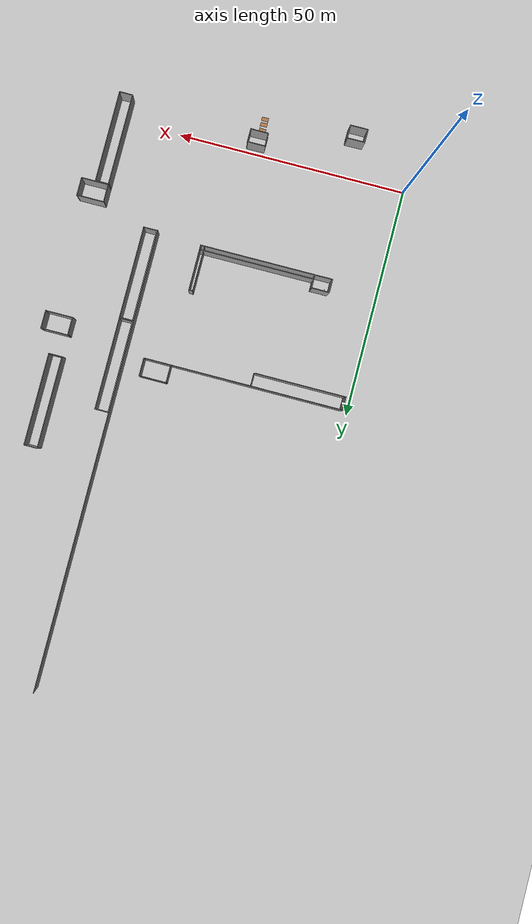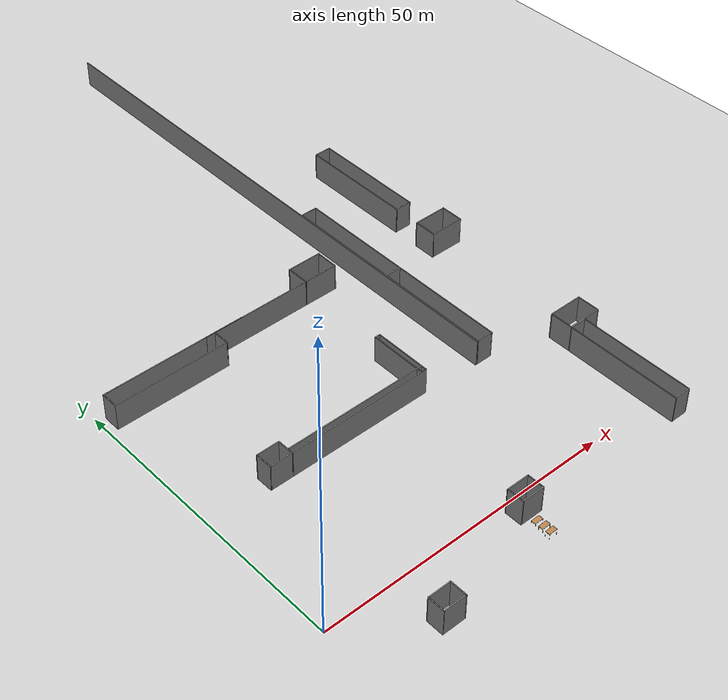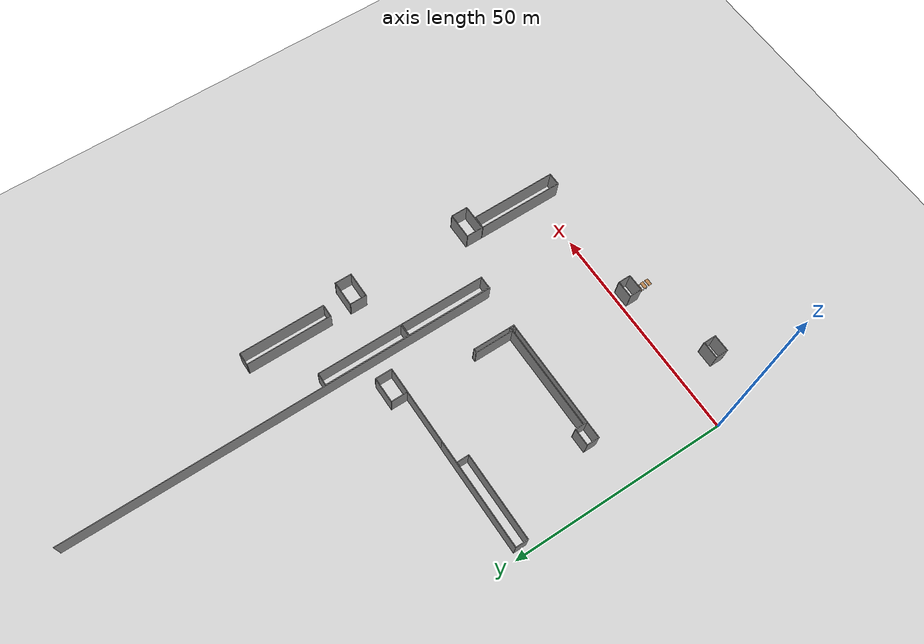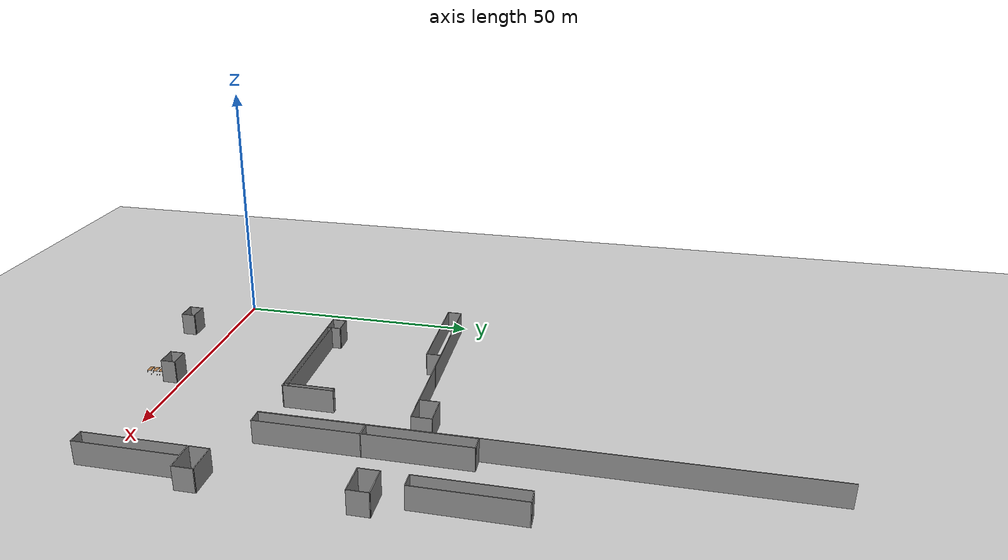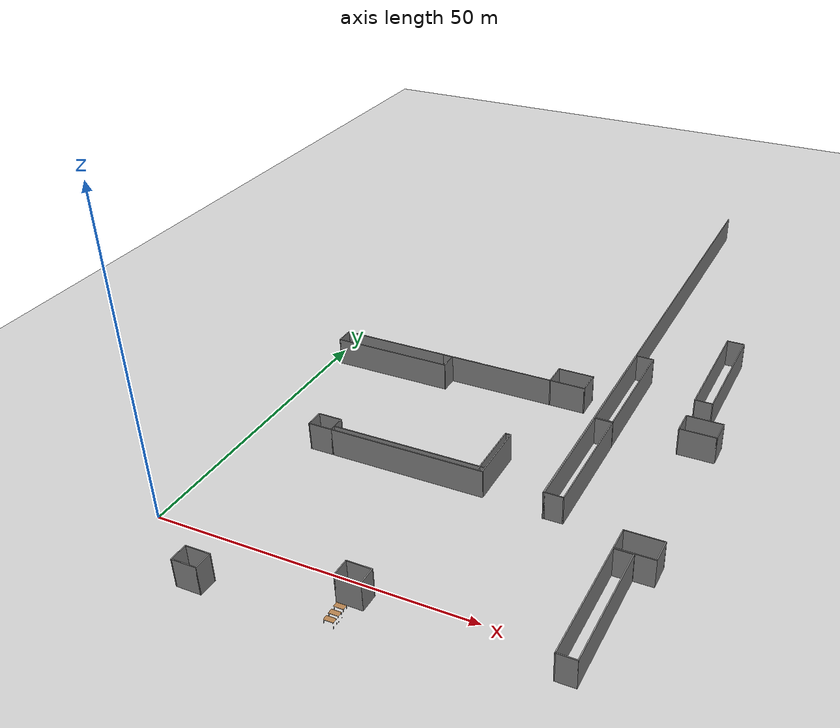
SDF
<sdf version="1.6">
 <world name="default">
  <model name="ground_plane">
   <static>1</static>
   <link name="link">
    <collision name="collision">
     <geometry><plane><normal>0 0 1</normal><size>320 320</size></plane></geometry>
     <surface>
      <contact><collide_bitmask>65535</collide_bitmask></contact>
      <friction><ode><mu>100</mu><mu2>50</mu2></ode></friction>
     </surface>
    </collision>
    <visual name="visual">
     <cast_shadows>0</cast_shadows>
     <geometry><plane><normal>0 0 1</normal><size>320 320</size></plane></geometry>
     <material>
      <script><uri>file://media/materials/scripts/gazebo.material</uri><name>Gazebo/Grey</name></script>
     </material>
    </visual>
   </link>
  </model>
  <model name="wall_25m_5">
   <pose>14.0033 49.3464 0 0 -0 0</pose>
   <link name="Wall_28">
    <collision name="Wall_28_Collision">
     <geometry><box><size>25 0.15 6.555</size></box></geometry>
     <pose>0 0 1.25 0 -0 0</pose>
    </collision>
    <visual name="Wall_28_Visual">
     <pose>0 0 1.25 0 -0 0</pose>
     <geometry><box><size>25 0.15 6.555</size></box></geometry>
     <material>
      <script><uri>file://media/materials/scripts/gazebo.material</uri><name>Gazebo/Grey</name></script>
      <ambient>1 1 1 1</ambient>
     </material>
     <meta><layer>0</layer></meta>
    </visual>
   </link>
   <static>1</static>
  </model>
  <model name="base10x1">
   <pose>38.8343 28.0126 0 0 -0 0</pose>
   <link name="Wall_15">
    <collision name="Wall_15_Collision">
     <geometry><box><size>10 0.15 6.555</size></box></geometry>
     <pose>0 0 1.25 0 -0 0</pose>
    </collision>
    <visual name="Wall_15_Visual">
     <pose>0 0 1.25 0 -0 0</pose>
     <geometry><box><size>10 0.15 6.555</size></box></geometry>
     <material>
      <script><uri>file://media/materials/scripts/gazebo.material</uri><name>Gazebo/Grey</name></script>
      <ambient>1 1 1 1</ambient>
     </material>
     <meta><layer>0</layer></meta>
    </visual>
    <pose>-0.425 0 0 0 -0 1.5708</pose>
   </link>
   <link name="Wall_16">
    <collision name="Wall_16_Collision">
     <geometry><box><size>1 0.15 6.555</size></box></geometry>
     <pose>0 0 1.25 0 -0 0</pose>
    </collision>
    <visual name="Wall_16_Visual">
     <pose>0 0 1.25 0 -0 0</pose>
     <geometry><box><size>1 0.15 6.555</size></box></geometry>
     <material>
      <script><uri>file://media/materials/scripts/gazebo.material</uri><name>Gazebo/Grey</name></script>
      <ambient>1 1 1 1</ambient>
     </material>
     <meta><layer>0</layer></meta>
    </visual>
    <pose>0 4.925 0 0 -0 0</pose>
   </link>
   <link name="Wall_17">
    <collision name="Wall_17_Collision">
     <geometry><box><size>10 0.15 6.555</size></box></geometry>
     <pose>0 0 1.25 0 -0 0</pose>
    </collision>
    <visual name="Wall_17_Visual">
     <pose>0 0 1.25 0 -0 0</pose>
     <geometry><box><size>10 0.15 6.555</size></box></geometry>
     <material>
      <script><uri>file://media/materials/scripts/gazebo.material</uri><name>Gazebo/Grey</name></script>
      <ambient>1 1 1 1</ambient>
     </material>
     <meta><layer>0</layer></meta>
    </visual>
    <pose>0.425 0 0 0 -0 -1.5708</pose>
   </link>
   <link name="Wall_18">
    <collision name="Wall_18_Collision">
     <geometry><box><size>1 0.15 6.555</size></box></geometry>
     <pose>0 0 1.25 0 -0 0</pose>
    </collision>
    <visual name="Wall_18_Visual">
     <pose>0 0 1.25 0 -0 0</pose>
     <geometry><box><size>1 0.15 6.555</size></box></geometry>
     <material>
      <script><uri>file://media/materials/scripts/gazebo.material</uri><name>Gazebo/Grey</name></script>
      <ambient>1 1 1 1</ambient>
     </material>
     <meta><layer>0</layer></meta>
    </visual>
    <pose>0 -4.925 0 0 -0 3.14159</pose>
   </link>
   <static>1</static>
  </model>
  <model name="base3x4_30">
   <pose>12.3458 24.5057 0 0 -0 0</pose>
   <link name="Wall_18">
    <collision name="Wall_18_Collision">
     <geometry><box><size>3 0.15 6.555</size></box></geometry>
     <pose>0 0 1.25 0 -0 0</pose>
    </collision>
    <visual name="Wall_18_Visual">
     <pose>0 0 1.25 0 -0 0</pose>
     <geometry><box><size>3 0.15 6.555</size></box></geometry>
     <material>
      <script><uri>file://media/materials/scripts/gazebo.material</uri><name>Gazebo/Grey</name></script>
      <ambient>1 1 1 1</ambient>
     </material>
     <meta><layer>0</layer></meta>
    </visual>
    <pose>-1.925 -0 0 0 -0 -1.5708</pose>
   </link>
   <link name="Wall_19">
    <collision name="Wall_19_Collision">
     <geometry><box><size>4 0.15 6.555</size></box></geometry>
     <pose>0 0 1.25 0 -0 0</pose>
    </collision>
    <visual name="Wall_19_Visual">
     <pose>0 0 1.25 0 -0 0</pose>
     <geometry><box><size>4 0.15 6.555</size></box></geometry>
     <material>
      <script><uri>file://media/materials/scripts/gazebo.material</uri><name>Gazebo/Grey</name></script>
      <ambient>1 1 1 1</ambient>
     </material>
     <meta><layer>0</layer></meta>
    </visual>
    <pose>-0 -1.425 0 0 -0 0</pose>
   </link>
   <link name="Wall_20">
    <collision name="Wall_20_Collision">
     <geometry><box><size>3 0.15 6.555</size></box></geometry>
     <pose>0 0 1.25 0 -0 0</pose>
    </collision>
    <visual name="Wall_20_Visual">
     <pose>0 0 1.25 0 -0 0</pose>
     <geometry><box><size>3 0.15 6.555</size></box></geometry>
     <material>
      <script><uri>file://media/materials/scripts/gazebo.material</uri><name>Gazebo/Grey</name></script>
      <ambient>1 1 1 1</ambient>
     </material>
     <meta><layer>0</layer></meta>
    </visual>
    <pose>1.925 -0 0 0 -0 1.5708</pose>
   </link>
   <link name="Wall_21">
    <collision name="Wall_21_Collision">
     <geometry><box><size>4 0.15 6.555</size></box></geometry>
     <pose>0 0 1.25 0 -0 0</pose>
    </collision>
    <visual name="Wall_21_Visual">
     <pose>0 0 1.25 0 -0 0</pose>
     <geometry><box><size>4 0.15 6.555</size></box></geometry>
     <material>
      <script><uri>file://media/materials/scripts/gazebo.material</uri><name>Gazebo/Grey</name></script>
      <ambient>1 1 1 1</ambient>
     </material>
     <meta><layer>0</layer></meta>
    </visual>
    <pose>-0 1.425 0 0 -0 3.14159</pose>
   </link>
   <static>1</static>
  </model>
  <model name="base3x4_74">
   <pose>33.377 -2.40049 0 0 -0 0</pose>
   <link name="Wall_18">
    <collision name="Wall_18_Collision">
     <geometry><box><size>3 0.15 6.555</size></box></geometry>
     <pose>0 0 1.25 0 -0 0</pose>
    </collision>
    <visual name="Wall_18_Visual">
     <pose>0 0 1.25 0 -0 0</pose>
     <geometry><box><size>3 0.15 6.555</size></box></geometry>
     <material>
      <script><uri>file://media/materials/scripts/gazebo.material</uri><name>Gazebo/Grey</name></script>
      <ambient>1 1 1 1</ambient>
     </material>
     <meta><layer>0</layer></meta>
    </visual>
    <pose>-1.925 -0 0 0 -0 -1.5708</pose>
   </link>
   <link name="Wall_19">
    <collision name="Wall_19_Collision">
     <geometry><box><size>4 0.15 6.555</size></box></geometry>
     <pose>0 0 1.25 0 -0 0</pose>
    </collision>
    <visual name="Wall_19_Visual">
     <pose>0 0 1.25 0 -0 0</pose>
     <geometry><box><size>4 0.15 6.555</size></box></geometry>
     <material>
      <script><uri>file://media/materials/scripts/gazebo.material</uri><name>Gazebo/Grey</name></script>
      <ambient>1 1 1 1</ambient>
     </material>
     <meta><layer>0</layer></meta>
    </visual>
    <pose>-0 -1.425 0 0 -0 0</pose>
   </link>
   <link name="Wall_20">
    <collision name="Wall_20_Collision">
     <geometry><box><size>3 0.15 6.555</size></box></geometry>
     <pose>0 0 1.25 0 -0 0</pose>
    </collision>
    <visual name="Wall_20_Visual">
     <pose>0 0 1.25 0 -0 0</pose>
     <geometry><box><size>3 0.15 6.555</size></box></geometry>
     <material>
      <script><uri>file://media/materials/scripts/gazebo.material</uri><name>Gazebo/Grey</name></script>
      <ambient>1 1 1 1</ambient>
     </material>
     <meta><layer>0</layer></meta>
    </visual>
    <pose>1.925 -0 0 0 -0 1.5708</pose>
   </link>
   <link name="Wall_21">
    <collision name="Wall_21_Collision">
     <geometry><box><size>4 0.15 6.555</size></box></geometry>
     <pose>0 0 1.25 0 -0 0</pose>
    </collision>
    <visual name="Wall_21_Visual">
     <pose>0 0 1.25 0 -0 0</pose>
     <geometry><box><size>4 0.15 6.555</size></box></geometry>
     <material>
      <script><uri>file://media/materials/scripts/gazebo.material</uri><name>Gazebo/Grey</name></script>
      <ambient>1 1 1 1</ambient>
     </material>
     <meta><layer>0</layer></meta>
    </visual>
    <pose>-0 1.425 0 0 -0 3.14159</pose>
   </link>
   <static>1</static>
  </model>
  <model name="wall_25m_0">
   <pose>26.8412 23.0792 0 0 -0 0</pose>
   <link name="Wall_28">
    <collision name="Wall_28_Collision">
     <geometry><box><size>25 0.15 6.555</size></box></geometry>
     <pose>0 0 1.25 0 -0 0</pose>
    </collision>
    <visual name="Wall_28_Visual">
     <pose>0 0 1.25 0 -0 0</pose>
     <geometry><box><size>25 0.15 6.555</size></box></geometry>
     <material>
      <script><uri>file://media/materials/scripts/gazebo.material</uri><name>Gazebo/Grey</name></script>
      <ambient>1 1 1 1</ambient>
     </material>
     <meta><layer>0</layer></meta>
    </visual>
   </link>
   <static>1</static>
  </model>
  <model name="wall_25m_2">
   <pose>26.7296 24.0129 0 0 -0 0</pose>
   <link name="Wall_28">
    <collision name="Wall_28_Collision">
     <geometry><box><size>25 0.15 6.555</size></box></geometry>
     <pose>0 0 1.25 0 -0 0</pose>
    </collision>
    <visual name="Wall_28_Visual">
     <pose>0 0 1.25 0 -0 0</pose>
     <geometry><box><size>25 0.15 6.555</size></box></geometry>
     <material>
      <script><uri>file://media/materials/scripts/gazebo.material</uri><name>Gazebo/Grey</name></script>
      <ambient>1 1 1 1</ambient>
     </material>
     <meta><layer>0</layer></meta>
    </visual>
   </link>
   <static>1</static>
  </model>
  <model name="table_9">
   <static>1</static>
   <link name="link">
    <collision name="surface">
     <pose>0 0 1 0 -0 0</pose>
     <geometry><box><size>1.5 0.8 0.03</size></box></geometry>
     <surface><friction><ode><mu>0.6</mu><mu2>0.6</mu2></ode></friction></surface>
    </collision>
    <visual name="visual1">
     <pose>0 0 1 0 -0 0</pose>
     <geometry><box><size>1.5 0.8 0.03</size></box></geometry>
     <material>
      <script><uri>file://media/materials/scripts/gazebo.material</uri><name>Gazebo/Wood</name></script>
     </material>
    </visual>
    <collision name="front_left_leg">
     <pose>0.68 0.38 0.5 0 -0 0</pose>
     <geometry><cylinder><radius>0.02</radius><length>1</length></cylinder></geometry>
    </collision>
    <visual name="front_left_leg">
     <pose>0.68 0.38 0.5 0 -0 0</pose>
     <geometry><cylinder><radius>0.02</radius><length>1</length></cylinder></geometry>
     <material>
      <script><uri>file://media/materials/scripts/gazebo.material</uri><name>Gazebo/Grey</name></script>
     </material>
    </visual>
    <collision name="front_right_leg">
     <pose>0.68 -0.38 0.5 0 -0 0</pose>
     <geometry><cylinder><radius>0.02</radius><length>1</length></cylinder></geometry>
    </collision>
    <visual name="front_right_leg">
     <pose>0.68 -0.38 0.5 0 -0 0</pose>
     <geometry><cylinder><radius>0.02</radius><length>1</length></cylinder></geometry>
     <material>
      <script><uri>file://media/materials/scripts/gazebo.material</uri><name>Gazebo/Grey</name></script>
     </material>
    </visual>
    <collision name="back_right_leg">
     <pose>-0.68 -0.38 0.5 0 -0 0</pose>
     <geometry><cylinder><radius>0.02</radius><length>1</length></cylinder></geometry>
    </collision>
    <visual name="back_right_leg">
     <pose>-0.68 -0.38 0.5 0 -0 0</pose>
     <geometry><cylinder><radius>0.02</radius><length>1</length></cylinder></geometry>
     <material>
      <script><uri>file://media/materials/scripts/gazebo.material</uri><name>Gazebo/Grey</name></script>
     </material>
    </visual>
    <collision name="back_left_leg">
     <pose>-0.68 0.38 0.5 0 -0 0</pose>
     <geometry><cylinder><radius>0.02</radius><length>1</length></cylinder></geometry>
    </collision>
    <visual name="back_left_leg">
     <pose>-0.68 0.38 0.5 0 -0 0</pose>
     <geometry><cylinder><radius>0.02</radius><length>1</length></cylinder></geometry>
     <material>
      <script><uri>file://media/materials/scripts/gazebo.material</uri><name>Gazebo/Grey</name></script>
     </material>
    </visual>
   </link>
   <pose>32.9806 -7.80617 0 0 -0 0</pose>
  </model>
  <model name="table_10">
   <static>1</static>
   <link name="link">
    <collision name="surface">
     <pose>0 0 1 0 -0 0</pose>
     <geometry><box><size>1.5 0.8 0.03</size></box></geometry>
     <surface><friction><ode><mu>0.6</mu><mu2>0.6</mu2></ode></friction></surface>
    </collision>
    <visual name="visual1">
     <pose>0 0 1 0 -0 0</pose>
     <geometry><box><size>1.5 0.8 0.03</size></box></geometry>
     <material>
      <script><uri>file://media/materials/scripts/gazebo.material</uri><name>Gazebo/Wood</name></script>
     </material>
    </visual>
    <collision name="front_left_leg">
     <pose>0.68 0.38 0.5 0 -0 0</pose>
     <geometry><cylinder><radius>0.02</radius><length>1</length></cylinder></geometry>
    </collision>
    <visual name="front_left_leg">
     <pose>0.68 0.38 0.5 0 -0 0</pose>
     <geometry><cylinder><radius>0.02</radius><length>1</length></cylinder></geometry>
     <material>
      <script><uri>file://media/materials/scripts/gazebo.material</uri><name>Gazebo/Grey</name></script>
     </material>
    </visual>
    <collision name="front_right_leg">
     <pose>0.68 -0.38 0.5 0 -0 0</pose>
     <geometry><cylinder><radius>0.02</radius><length>1</length></cylinder></geometry>
    </collision>
    <visual name="front_right_leg">
     <pose>0.68 -0.38 0.5 0 -0 0</pose>
     <geometry><cylinder><radius>0.02</radius><length>1</length></cylinder></geometry>
     <material>
      <script><uri>file://media/materials/scripts/gazebo.material</uri><name>Gazebo/Grey</name></script>
     </material>
    </visual>
    <collision name="back_right_leg">
     <pose>-0.68 -0.38 0.5 0 -0 0</pose>
     <geometry><cylinder><radius>0.02</radius><length>1</length></cylinder></geometry>
    </collision>
    <visual name="back_right_leg">
     <pose>-0.68 -0.38 0.5 0 -0 0</pose>
     <geometry><cylinder><radius>0.02</radius><length>1</length></cylinder></geometry>
     <material>
      <script><uri>file://media/materials/scripts/gazebo.material</uri><name>Gazebo/Grey</name></script>
     </material>
    </visual>
    <collision name="back_left_leg">
     <pose>-0.68 0.38 0.5 0 -0 0</pose>
     <geometry><cylinder><radius>0.02</radius><length>1</length></cylinder></geometry>
    </collision>
    <visual name="back_left_leg">
     <pose>-0.68 0.38 0.5 0 -0 0</pose>
     <geometry><cylinder><radius>0.02</radius><length>1</length></cylinder></geometry>
     <material>
      <script><uri>file://media/materials/scripts/gazebo.material</uri><name>Gazebo/Grey</name></script>
     </material>
    </visual>
   </link>
   <pose>32.9655 -6.58438 0 0 -0 0</pose>
  </model>
  <model name="table_11">
   <static>1</static>
   <link name="link">
    <collision name="surface">
     <pose>0 0 1 0 -0 0</pose>
     <geometry><box><size>1.5 0.8 0.03</size></box></geometry>
     <surface><friction><ode><mu>0.6</mu><mu2>0.6</mu2></ode></friction></surface>
    </collision>
    <visual name="visual1">
     <pose>0 0 1 0 -0 0</pose>
     <geometry><box><size>1.5 0.8 0.03</size></box></geometry>
     <material>
      <script><uri>file://media/materials/scripts/gazebo.material</uri><name>Gazebo/Wood</name></script>
     </material>
    </visual>
    <collision name="front_left_leg">
     <pose>0.68 0.38 0.5 0 -0 0</pose>
     <geometry><cylinder><radius>0.02</radius><length>1</length></cylinder></geometry>
    </collision>
    <visual name="front_left_leg">
     <pose>0.68 0.38 0.5 0 -0 0</pose>
     <geometry><cylinder><radius>0.02</radius><length>1</length></cylinder></geometry>
     <material>
      <script><uri>file://media/materials/scripts/gazebo.material</uri><name>Gazebo/Grey</name></script>
     </material>
    </visual>
    <collision name="front_right_leg">
     <pose>0.68 -0.38 0.5 0 -0 0</pose>
     <geometry><cylinder><radius>0.02</radius><length>1</length></cylinder></geometry>
    </collision>
    <visual name="front_right_leg">
     <pose>0.68 -0.38 0.5 0 -0 0</pose>
     <geometry><cylinder><radius>0.02</radius><length>1</length></cylinder></geometry>
     <material>
      <script><uri>file://media/materials/scripts/gazebo.material</uri><name>Gazebo/Grey</name></script>
     </material>
    </visual>
    <collision name="back_right_leg">
     <pose>-0.68 -0.38 0.5 0 -0 0</pose>
     <geometry><cylinder><radius>0.02</radius><length>1</length></cylinder></geometry>
    </collision>
    <visual name="back_right_leg">
     <pose>-0.68 -0.38 0.5 0 -0 0</pose>
     <geometry><cylinder><radius>0.02</radius><length>1</length></cylinder></geometry>
     <material>
      <script><uri>file://media/materials/scripts/gazebo.material</uri><name>Gazebo/Grey</name></script>
     </material>
    </visual>
    <collision name="back_left_leg">
     <pose>-0.68 0.38 0.5 0 -0 0</pose>
     <geometry><cylinder><radius>0.02</radius><length>1</length></cylinder></geometry>
    </collision>
    <visual name="back_left_leg">
     <pose>-0.68 0.38 0.5 0 -0 0</pose>
     <geometry><cylinder><radius>0.02</radius><length>1</length></cylinder></geometry>
     <material>
      <script><uri>file://media/materials/scripts/gazebo.material</uri><name>Gazebo/Grey</name></script>
     </material>
    </visual>
   </link>
   <pose>32.9166 -5.29279 0 0 -0 0</pose>
  </model>
  <model name="wood_cube_5cm">
   <link name="link">
    <pose>0 0 0.025 0 -0 0</pose>
    <inertial>
     <mass>0.0565</mass>
     <inertia>
      <ixx>2.35417e-05</ixx>
      <ixy>0</ixy>
      <ixz>0</ixz>
      <iyy>2.35417e-05</iyy>
      <iyz>0</iyz>
      <izz>2.35417e-05</izz>
     </inertia>
    </inertial>
    <collision name="collision">
     <geometry><box><size>0.05 0.05 0.05</size></box></geometry>
     <surface>
      <contact>
       <poissons_ratio>0.347</poissons_ratio>
       <elastic_modulus>8.8e+09</elastic_modulus>
       <ode><kp>100000</kp><kd>1</kd><max_vel>1</max_vel><min_depth>0.001</min_depth></ode>
      </contact>
      <friction>
       <torsional>
        <coefficient>1</coefficient>
        <use_patch_radius>0</use_patch_radius>
        <surface_radius>0.05</surface_radius>
       </torsional>
      </friction>
     </surface>
    </collision>
    <visual name="visual">
     <geometry><box><size>0.05 0.05 0.05</size></box></geometry>
     <material>
      <script><uri>file://media/materials/scripts/gazebo.material</uri><name>Gazebo/Wood</name></script>
     </material>
    </visual>
   </link>
   <pose>11.2698 23.5655 -0.001001 0 -0 0</pose>
  </model>
  <model name="wood_cube_5cm_0">
   <link name="link">
    <pose>0 0 0.025 0 -0 0</pose>
    <inertial>
     <mass>0.0565</mass>
     <inertia>
      <ixx>2.35417e-05</ixx>
      <ixy>0</ixy>
      <ixz>0</ixz>
      <iyy>2.35417e-05</iyy>
      <iyz>0</iyz>
      <izz>2.35417e-05</izz>
     </inertia>
    </inertial>
    <collision name="collision">
     <geometry><box><size>0.05 0.05 0.05</size></box></geometry>
     <surface>
      <contact>
       <poissons_ratio>0.347</poissons_ratio>
       <elastic_modulus>8.8e+09</elastic_modulus>
       <ode><kp>100000</kp><kd>1</kd><max_vel>1</max_vel><min_depth>0.001</min_depth></ode>
      </contact>
      <friction>
       <torsional>
        <coefficient>1</coefficient>
        <use_patch_radius>0</use_patch_radius>
        <surface_radius>0.05</surface_radius>
       </torsional>
      </friction>
     </surface>
    </collision>
    <visual name="visual">
     <geometry><box><size>0.05 0.05 0.05</size></box></geometry>
     <material>
      <script><uri>file://media/materials/scripts/gazebo.material</uri><name>Gazebo/Wood</name></script>
     </material>
    </visual>
   </link>
   <pose>11.2265 23.8764 -0.001001 0 -0 0</pose>
  </model>
  <model name="wood_cube_5cm_1">
   <link name="link">
    <pose>0 0 0.025 0 -0 0</pose>
    <inertial>
     <mass>0.0565</mass>
     <inertia>
      <ixx>2.35417e-05</ixx>
      <ixy>0</ixy>
      <ixz>0</ixz>
      <iyy>2.35417e-05</iyy>
      <iyz>0</iyz>
      <izz>2.35417e-05</izz>
     </inertia>
    </inertial>
    <collision name="collision">
     <geometry><box><size>0.05 0.05 0.05</size></box></geometry>
     <surface>
      <contact>
       <poissons_ratio>0.347</poissons_ratio>
       <elastic_modulus>8.8e+09</elastic_modulus>
       <ode><kp>100000</kp><kd>1</kd><max_vel>1</max_vel><min_depth>0.001</min_depth></ode>
      </contact>
      <friction>
       <torsional>
        <coefficient>1</coefficient>
        <use_patch_radius>0</use_patch_radius>
        <surface_radius>0.05</surface_radius>
       </torsional>
      </friction>
     </surface>
    </collision>
    <visual name="visual">
     <geometry><box><size>0.05 0.05 0.05</size></box></geometry>
     <material>
      <script><uri>file://media/materials/scripts/gazebo.material</uri><name>Gazebo/Wood</name></script>
     </material>
    </visual>
   </link>
   <pose>11.2228 24.2076 -0.001001 0 -0 0</pose>
  </model>
  <model name="wood_cube_5cm_2">
   <link name="link">
    <pose>0 0 0.025 0 -0 0</pose>
    <inertial>
     <mass>0.0565</mass>
     <inertia>
      <ixx>2.35417e-05</ixx>
      <ixy>0</ixy>
      <ixz>0</ixz>
      <iyy>2.35417e-05</iyy>
      <iyz>0</iyz>
      <izz>2.35417e-05</izz>
     </inertia>
    </inertial>
    <collision name="collision">
     <geometry><box><size>0.05 0.05 0.05</size></box></geometry>
     <surface>
      <contact>
       <poissons_ratio>0.347</poissons_ratio>
       <elastic_modulus>8.8e+09</elastic_modulus>
       <ode><kp>100000</kp><kd>1</kd><max_vel>1</max_vel><min_depth>0.001</min_depth></ode>
      </contact>
      <friction>
       <torsional>
        <coefficient>1</coefficient>
        <use_patch_radius>0</use_patch_radius>
        <surface_radius>0.05</surface_radius>
       </torsional>
      </friction>
     </surface>
    </collision>
    <visual name="visual">
     <geometry><box><size>0.05 0.05 0.05</size></box></geometry>
     <material>
      <script><uri>file://media/materials/scripts/gazebo.material</uri><name>Gazebo/Wood</name></script>
     </material>
    </visual>
   </link>
   <pose>11.2193 24.5122 -0.001001 0 -0 0</pose>
  </model>
  <model name="wood_cube_5cm_3">
   <link name="link">
    <pose>0 0 0.025 0 -0 0</pose>
    <inertial>
     <mass>0.0565</mass>
     <inertia>
      <ixx>2.35417e-05</ixx>
      <ixy>0</ixy>
      <ixz>0</ixz>
      <iyy>2.35417e-05</iyy>
      <iyz>0</iyz>
      <izz>2.35417e-05</izz>
     </inertia>
    </inertial>
    <collision name="collision">
     <geometry><box><size>0.05 0.05 0.05</size></box></geometry>
     <surface>
      <contact>
       <poissons_ratio>0.347</poissons_ratio>
       <elastic_modulus>8.8e+09</elastic_modulus>
       <ode><kp>100000</kp><kd>1</kd><max_vel>1</max_vel><min_depth>0.001</min_depth></ode>
      </contact>
      <friction>
       <torsional>
        <coefficient>1</coefficient>
        <use_patch_radius>0</use_patch_radius>
        <surface_radius>0.05</surface_radius>
       </torsional>
      </friction>
     </surface>
    </collision>
    <visual name="visual">
     <geometry><box><size>0.05 0.05 0.05</size></box></geometry>
     <material>
      <script><uri>file://media/materials/scripts/gazebo.material</uri><name>Gazebo/Wood</name></script>
     </material>
    </visual>
   </link>
   <pose>11.2221 24.8504 -0.001001 0 -0 0</pose>
  </model>
  <model name="wood_cube_5cm_5">
   <link name="link">
    <pose>0 0 0.025 0 -0 0</pose>
    <inertial>
     <mass>0.0565</mass>
     <inertia>
      <ixx>2.35417e-05</ixx>
      <ixy>0</ixy>
      <ixz>0</ixz>
      <iyy>2.35417e-05</iyy>
      <iyz>0</iyz>
      <izz>2.35417e-05</izz>
     </inertia>
    </inertial>
    <collision name="collision">
     <geometry><box><size>0.05 0.05 0.05</size></box></geometry>
     <surface>
      <contact>
       <poissons_ratio>0.347</poissons_ratio>
       <elastic_modulus>8.8e+09</elastic_modulus>
       <ode><kp>100000</kp><kd>1</kd><max_vel>1</max_vel><min_depth>0.001</min_depth></ode>
      </contact>
      <friction>
       <torsional>
        <coefficient>1</coefficient>
        <use_patch_radius>0</use_patch_radius>
        <surface_radius>0.05</surface_radius>
       </torsional>
      </friction>
     </surface>
    </collision>
    <visual name="visual">
     <geometry><box><size>0.05 0.05 0.05</size></box></geometry>
     <material>
      <script><uri>file://media/materials/scripts/gazebo.material</uri><name>Gazebo/Wood</name></script>
     </material>
    </visual>
   </link>
   <pose>11.2217 25.4529 -0.001001 0 -0 0</pose>
  </model>
  <model name="wall_25m_6">
   <pose>32.2649 49.3103 0 0 -0 0</pose>
   <link name="Wall_28">
    <collision name="Wall_28_Collision">
     <geometry><box><size>25 0.15 6.555</size></box></geometry>
     <pose>0 0 1.25 0 -0 0</pose>
    </collision>
    <visual name="Wall_28_Visual">
     <pose>0 0 1.25 0 -0 0</pose>
     <geometry><box><size>25 0.15 6.555</size></box></geometry>
     <material>
      <script><uri>file://media/materials/scripts/gazebo.material</uri><name>Gazebo/Grey</name></script>
      <ambient>1 1 1 1</ambient>
     </material>
     <meta><layer>0</layer></meta>
    </visual>
   </link>
   <static>1</static>
  </model>
  <model name="base4x6_2">
   <pose>41.8103 51.2252 0 0 -0 0</pose>
   <link name="Wall_23">
    <collision name="Wall_23_Collision">
     <geometry><box><size>4 0.15 6.555</size></box></geometry>
     <pose>0 0 1.25 0 -0 0</pose>
    </collision>
    <visual name="Wall_23_Visual">
     <pose>0 0 1.25 0 -0 0</pose>
     <geometry><box><size>4 0.15 6.555</size></box></geometry>
     <material>
      <script><uri>file://media/materials/scripts/gazebo.material</uri><name>Gazebo/Grey</name></script>
      <ambient>1 1 1 1</ambient>
     </material>
     <meta><layer>0</layer></meta>
    </visual>
    <pose>-2.925 0 0 0 -0 -1.5708</pose>
   </link>
   <link name="Wall_24">
    <collision name="Wall_24_Collision">
     <geometry><box><size>6 0.15 6.555</size></box></geometry>
     <pose>0 0 1.25 0 -0 0</pose>
    </collision>
    <visual name="Wall_24_Visual">
     <pose>0 0 1.25 0 -0 0</pose>
     <geometry><box><size>6 0.15 6.555</size></box></geometry>
     <material>
      <script><uri>file://media/materials/scripts/gazebo.material</uri><name>Gazebo/Grey</name></script>
      <ambient>1 1 1 1</ambient>
     </material>
     <meta><layer>0</layer></meta>
    </visual>
    <pose>-0 -1.925 0 0 -0 0</pose>
   </link>
   <link name="Wall_25">
    <collision name="Wall_25_Collision">
     <geometry><box><size>4 0.15 6.555</size></box></geometry>
     <pose>0 0 1.25 0 -0 0</pose>
    </collision>
    <visual name="Wall_25_Visual">
     <pose>0 0 1.25 0 -0 0</pose>
     <geometry><box><size>4 0.15 6.555</size></box></geometry>
     <material>
      <script><uri>file://media/materials/scripts/gazebo.material</uri><name>Gazebo/Grey</name></script>
      <ambient>1 1 1 1</ambient>
     </material>
     <meta><layer>0</layer></meta>
    </visual>
    <pose>2.925 0 0 0 -0 1.5708</pose>
   </link>
   <link name="Wall_26">
    <collision name="Wall_26_Collision">
     <geometry><box><size>6 0.15 6.555</size></box></geometry>
     <pose>0 0 1.25 0 -0 0</pose>
    </collision>
    <visual name="Wall_26_Visual">
     <pose>0 0 1.25 0 -0 0</pose>
     <geometry><box><size>6 0.15 6.555</size></box></geometry>
     <material>
      <script><uri>file://media/materials/scripts/gazebo.material</uri><name>Gazebo/Grey</name></script>
      <ambient>1 1 1 1</ambient>
     </material>
     <meta><layer>0</layer></meta>
    </visual>
    <pose>-0 1.925 0 0 -0 3.14159</pose>
   </link>
   <static>1</static>
  </model>
  <model name="base3x20">
   <pose>11.4622 47.9035 0 0 -0 0</pose>
   <link name="Wall_16">
    <collision name="Wall_16_Collision">
     <geometry><box><size>3 0.15 6.555</size></box></geometry>
     <pose>0 0 1.25 0 -0 0</pose>
    </collision>
    <visual name="Wall_16_Visual">
     <pose>0 0 1.25 0 -0 0</pose>
     <geometry><box><size>3 0.15 6.555</size></box></geometry>
     <material>
      <script><uri>file://media/materials/scripts/gazebo.material</uri><name>Gazebo/Grey</name></script>
      <ambient>1 1 1 1</ambient>
     </material>
     <meta><layer>0</layer></meta>
    </visual>
    <pose>-9.925 -0 0 0 -0 -1.5708</pose>
   </link>
   <link name="Wall_17">
    <collision name="Wall_17_Collision">
     <geometry><box><size>20 0.15 6.555</size></box></geometry>
     <pose>0 0 1.25 0 -0 0</pose>
    </collision>
    <visual name="Wall_17_Visual">
     <pose>0 0 1.25 0 -0 0</pose>
     <geometry><box><size>20 0.15 6.555</size></box></geometry>
     <material>
      <script><uri>file://media/materials/scripts/gazebo.material</uri><name>Gazebo/Grey</name></script>
      <ambient>1 1 1 1</ambient>
     </material>
     <meta><layer>0</layer></meta>
    </visual>
    <pose>-0 -1.425 0 0 -0 0</pose>
   </link>
   <link name="Wall_18">
    <collision name="Wall_18_Collision">
     <geometry><box><size>3 0.15 6.555</size></box></geometry>
     <pose>0 0 1.25 0 -0 0</pose>
    </collision>
    <visual name="Wall_18_Visual">
     <pose>0 0 1.25 0 -0 0</pose>
     <geometry><box><size>3 0.15 6.555</size></box></geometry>
     <material>
      <script><uri>file://media/materials/scripts/gazebo.material</uri><name>Gazebo/Grey</name></script>
      <ambient>1 1 1 1</ambient>
     </material>
     <meta><layer>0</layer></meta>
    </visual>
    <pose>9.925 -0 0 0 -0 1.5708</pose>
   </link>
   <link name="Wall_19">
    <collision name="Wall_19_Collision">
     <geometry><box><size>20 0.15 6.555</size></box></geometry>
     <pose>0 0 1.25 0 -0 0</pose>
    </collision>
    <visual name="Wall_19_Visual">
     <pose>0 0 1.25 0 -0 0</pose>
     <geometry><box><size>20 0.15 6.555</size></box></geometry>
     <material>
      <script><uri>file://media/materials/scripts/gazebo.material</uri><name>Gazebo/Grey</name></script>
      <ambient>1 1 1 1</ambient>
     </material>
     <meta><layer>0</layer></meta>
    </visual>
    <pose>-0 1.425 0 0 -0 3.14159</pose>
   </link>
   <static>1</static>
  </model>
  <model name="base4x6_7_clone_1">
   <pose>64.4342 46.7634 0 0 -0 0</pose>
   <link name="Wall_23">
    <collision name="Wall_23_Collision">
     <geometry><box><size>4 0.15 6.555</size></box></geometry>
     <pose>0 0 1.25 0 -0 0</pose>
    </collision>
    <visual name="Wall_23_Visual">
     <pose>0 0 1.25 0 -0 0</pose>
     <geometry><box><size>4 0.15 6.555</size></box></geometry>
     <material>
      <script><uri>file://media/materials/scripts/gazebo.material</uri><name>Gazebo/Grey</name></script>
      <ambient>1 1 1 1</ambient>
     </material>
     <meta><layer>0</layer></meta>
    </visual>
    <pose>-2.925 0 0 0 -0 -1.5708</pose>
   </link>
   <link name="Wall_24">
    <collision name="Wall_24_Collision">
     <geometry><box><size>6 0.15 6.555</size></box></geometry>
     <pose>0 0 1.25 0 -0 0</pose>
    </collision>
    <visual name="Wall_24_Visual">
     <pose>0 0 1.25 0 -0 0</pose>
     <geometry><box><size>6 0.15 6.555</size></box></geometry>
     <material>
      <script><uri>file://media/materials/scripts/gazebo.material</uri><name>Gazebo/Grey</name></script>
      <ambient>1 1 1 1</ambient>
     </material>
     <meta><layer>0</layer></meta>
    </visual>
    <pose>-0 -1.925 0 0 -0 0</pose>
   </link>
   <link name="Wall_25">
    <collision name="Wall_25_Collision">
     <geometry><box><size>4 0.15 6.555</size></box></geometry>
     <pose>0 0 1.25 0 -0 0</pose>
    </collision>
    <visual name="Wall_25_Visual">
     <pose>0 0 1.25 0 -0 0</pose>
     <geometry><box><size>4 0.15 6.555</size></box></geometry>
     <material>
      <script><uri>file://media/materials/scripts/gazebo.material</uri><name>Gazebo/Grey</name></script>
      <ambient>1 1 1 1</ambient>
     </material>
     <meta><layer>0</layer></meta>
    </visual>
    <pose>2.925 0 0 0 -0 1.5708</pose>
   </link>
   <link name="Wall_26">
    <collision name="Wall_26_Collision">
     <geometry><box><size>6 0.15 6.555</size></box></geometry>
     <pose>0 0 1.25 0 -0 0</pose>
    </collision>
    <visual name="Wall_26_Visual">
     <pose>0 0 1.25 0 -0 0</pose>
     <geometry><box><size>6 0.15 6.555</size></box></geometry>
     <material>
      <script><uri>file://media/materials/scripts/gazebo.material</uri><name>Gazebo/Grey</name></script>
      <ambient>1 1 1 1</ambient>
     </material>
     <meta><layer>0</layer></meta>
    </visual>
    <pose>-0 1.925 0 0 -0 3.14159</pose>
   </link>
   <static>1</static>
  </model>
  <model name="base4x6_7_clone_2">
   <pose>64.4959 17.4173 0 0 -0 0</pose>
   <link name="Wall_23">
    <collision name="Wall_23_Collision">
     <geometry><box><size>4 0.15 6.555</size></box></geometry>
     <pose>0 0 1.25 0 -0 0</pose>
    </collision>
    <visual name="Wall_23_Visual">
     <pose>0 0 1.25 0 -0 0</pose>
     <geometry><box><size>4 0.15 6.555</size></box></geometry>
     <material>
      <script><uri>file://media/materials/scripts/gazebo.material</uri><name>Gazebo/Grey</name></script>
      <ambient>1 1 1 1</ambient>
     </material>
     <meta><layer>0</layer></meta>
    </visual>
    <pose>-2.925 0 0 0 -0 -1.5708</pose>
   </link>
   <link name="Wall_24">
    <collision name="Wall_24_Collision">
     <geometry><box><size>6 0.15 6.555</size></box></geometry>
     <pose>0 0 1.25 0 -0 0</pose>
    </collision>
    <visual name="Wall_24_Visual">
     <pose>0 0 1.25 0 -0 0</pose>
     <geometry><box><size>6 0.15 6.555</size></box></geometry>
     <material>
      <script><uri>file://media/materials/scripts/gazebo.material</uri><name>Gazebo/Grey</name></script>
      <ambient>1 1 1 1</ambient>
     </material>
     <meta><layer>0</layer></meta>
    </visual>
    <pose>-0 -1.925 0 0 -0 0</pose>
   </link>
   <link name="Wall_25">
    <collision name="Wall_25_Collision">
     <geometry><box><size>4 0.15 6.555</size></box></geometry>
     <pose>0 0 1.25 0 -0 0</pose>
    </collision>
    <visual name="Wall_25_Visual">
     <pose>0 0 1.25 0 -0 0</pose>
     <geometry><box><size>4 0.15 6.555</size></box></geometry>
     <material>
      <script><uri>file://media/materials/scripts/gazebo.material</uri><name>Gazebo/Grey</name></script>
      <ambient>1 1 1 1</ambient>
     </material>
     <meta><layer>0</layer></meta>
    </visual>
    <pose>2.925 0 0 0 -0 1.5708</pose>
   </link>
   <link name="Wall_26">
    <collision name="Wall_26_Collision">
     <geometry><box><size>6 0.15 6.555</size></box></geometry>
     <pose>0 0 1.25 0 -0 0</pose>
    </collision>
    <visual name="Wall_26_Visual">
     <pose>0 0 1.25 0 -0 0</pose>
     <geometry><box><size>6 0.15 6.555</size></box></geometry>
     <material>
      <script><uri>file://media/materials/scripts/gazebo.material</uri><name>Gazebo/Grey</name></script>
      <ambient>1 1 1 1</ambient>
     </material>
     <meta><layer>0</layer></meta>
    </visual>
    <pose>-0 1.925 0 0 -0 3.14159</pose>
   </link>
   <static>1</static>
  </model>
  <model name="base20x3_3_clone">
   <pose>62.9066 63.3603 0 0 -0 0</pose>
   <link name="Wall_21">
    <collision name="Wall_21_Collision">
     <geometry><box><size>20 0.15 6.555</size></box></geometry>
     <pose>0 0 1.25 0 -0 0</pose>
    </collision>
    <visual name="Wall_21_Visual">
     <pose>0 0 1.25 0 -0 0</pose>
     <geometry><box><size>20 0.15 6.555</size></box></geometry>
     <material>
      <script><uri>file://media/materials/scripts/gazebo.material</uri><name>Gazebo/Grey</name></script>
      <ambient>1 1 1 1</ambient>
     </material>
     <meta><layer>0</layer></meta>
    </visual>
    <pose>-1.425 -0 0 0 -0 -1.5708</pose>
   </link>
   <link name="Wall_22">
    <collision name="Wall_22_Collision">
     <geometry><box><size>3 0.15 6.555</size></box></geometry>
     <pose>0 0 1.25 0 -0 0</pose>
    </collision>
    <visual name="Wall_22_Visual">
     <pose>0 0 1.25 0 -0 0</pose>
     <geometry><box><size>3 0.15 6.555</size></box></geometry>
     <material>
      <script><uri>file://media/materials/scripts/gazebo.material</uri><name>Gazebo/Grey</name></script>
      <ambient>1 1 1 1</ambient>
     </material>
     <meta><layer>0</layer></meta>
    </visual>
    <pose>-0 -9.925 0 0 -0 0</pose>
   </link>
   <link name="Wall_23">
    <collision name="Wall_23_Collision">
     <geometry><box><size>20 0.15 6.555</size></box></geometry>
     <pose>0 0 1.25 0 -0 0</pose>
    </collision>
    <visual name="Wall_23_Visual">
     <pose>0 0 1.25 0 -0 0</pose>
     <geometry><box><size>20 0.15 6.555</size></box></geometry>
     <material>
      <script><uri>file://media/materials/scripts/gazebo.material</uri><name>Gazebo/Grey</name></script>
      <ambient>1 1 1 1</ambient>
     </material>
     <meta><layer>0</layer></meta>
    </visual>
    <pose>1.425 -0 0 0 -0 1.5708</pose>
   </link>
   <link name="Wall_24">
    <collision name="Wall_24_Collision">
     <geometry><box><size>3 0.15 6.555</size></box></geometry>
     <pose>0 0 1.25 0 -0 0</pose>
    </collision>
    <visual name="Wall_24_Visual">
     <pose>0 0 1.25 0 -0 0</pose>
     <geometry><box><size>3 0.15 6.555</size></box></geometry>
     <material>
      <script><uri>file://media/materials/scripts/gazebo.material</uri><name>Gazebo/Grey</name></script>
      <ambient>1 1 1 1</ambient>
     </material>
     <meta><layer>0</layer></meta>
    </visual>
    <pose>-0 9.925 0 0 -0 3.14159</pose>
   </link>
   <static>1</static>
  </model>
  <model name="base20x3_3_clone_0">
   <pose>62.9904 5.43163 0 0 -0 0</pose>
   <link name="Wall_21">
    <collision name="Wall_21_Collision">
     <geometry><box><size>20 0.15 6.555</size></box></geometry>
     <pose>0 0 1.25 0 -0 0</pose>
    </collision>
    <visual name="Wall_21_Visual">
     <pose>0 0 1.25 0 -0 0</pose>
     <geometry><box><size>20 0.15 6.555</size></box></geometry>
     <material>
      <script><uri>file://media/materials/scripts/gazebo.material</uri><name>Gazebo/Grey</name></script>
      <ambient>1 1 1 1</ambient>
     </material>
     <meta><layer>0</layer></meta>
    </visual>
    <pose>-1.425 -0 0 0 -0 -1.5708</pose>
   </link>
   <link name="Wall_22">
    <collision name="Wall_22_Collision">
     <geometry><box><size>3 0.15 6.555</size></box></geometry>
     <pose>0 0 1.25 0 -0 0</pose>
    </collision>
    <visual name="Wall_22_Visual">
     <pose>0 0 1.25 0 -0 0</pose>
     <geometry><box><size>3 0.15 6.555</size></box></geometry>
     <material>
      <script><uri>file://media/materials/scripts/gazebo.material</uri><name>Gazebo/Grey</name></script>
      <ambient>1 1 1 1</ambient>
     </material>
     <meta><layer>0</layer></meta>
    </visual>
    <pose>-0 -9.925 0 0 -0 0</pose>
   </link>
   <link name="Wall_23">
    <collision name="Wall_23_Collision">
     <geometry><box><size>20 0.15 6.555</size></box></geometry>
     <pose>0 0 1.25 0 -0 0</pose>
    </collision>
    <visual name="Wall_23_Visual">
     <pose>0 0 1.25 0 -0 0</pose>
     <geometry><box><size>20 0.15 6.555</size></box></geometry>
     <material>
      <script><uri>file://media/materials/scripts/gazebo.material</uri><name>Gazebo/Grey</name></script>
      <ambient>1 1 1 1</ambient>
     </material>
     <meta><layer>0</layer></meta>
    </visual>
    <pose>1.425 -0 0 0 -0 1.5708</pose>
   </link>
   <link name="Wall_24">
    <collision name="Wall_24_Collision">
     <geometry><box><size>3 0.15 6.555</size></box></geometry>
     <pose>0 0 1.25 0 -0 0</pose>
    </collision>
    <visual name="Wall_24_Visual">
     <pose>0 0 1.25 0 -0 0</pose>
     <geometry><box><size>3 0.15 6.555</size></box></geometry>
     <material>
      <script><uri>file://media/materials/scripts/gazebo.material</uri><name>Gazebo/Grey</name></script>
      <ambient>1 1 1 1</ambient>
     </material>
     <meta><layer>0</layer></meta>
    </visual>
    <pose>-0 9.925 0 0 -0 3.14159</pose>
   </link>
   <static>1</static>
  </model>
  <model name="wall_100m_v">
   <pose>48.9216 72.2715 0 0 -0 0</pose>
   <link name="Wall_2">
    <collision name="Wall_2_Collision">
     <geometry><box><size>100 0.15 6.555</size></box></geometry>
     <pose>0 0 1.25 0 -0 0</pose>
    </collision>
    <visual name="Wall_2_Visual">
     <pose>0 0 1.25 0 -0 0</pose>
     <geometry><box><size>100 0.15 6.555</size></box></geometry>
     <material>
      <script><uri>file://media/materials/scripts/gazebo.material</uri><name>Gazebo/Grey</name></script>
      <ambient>1 1 1 1</ambient>
     </material>
     <meta><layer>0</layer></meta>
    </visual>
    <pose>0 1e-06 0 0 -0 -1.5708</pose>
   </link>
   <static>1</static>
  </model>
  <model name="base20x3_4_clone_1">
   <pose>50.4836 52.3296 0 0 -0 0</pose>
   <link name="Wall_21">
    <collision name="Wall_21_Collision">
     <geometry><box><size>20 0.15 6.555</size></box></geometry>
     <pose>0 0 1.25 0 -0 0</pose>
    </collision>
    <visual name="Wall_21_Visual">
     <pose>0 0 1.25 0 -0 0</pose>
     <geometry><box><size>20 0.15 6.555</size></box></geometry>
     <material>
      <script><uri>file://media/materials/scripts/gazebo.material</uri><name>Gazebo/Grey</name></script>
      <ambient>1 1 1 1</ambient>
     </material>
     <meta><layer>0</layer></meta>
    </visual>
    <pose>-1.425 -0 0 0 -0 -1.5708</pose>
   </link>
   <link name="Wall_22">
    <collision name="Wall_22_Collision">
     <geometry><box><size>3 0.15 6.555</size></box></geometry>
     <pose>0 0 1.25 0 -0 0</pose>
    </collision>
    <visual name="Wall_22_Visual">
     <pose>0 0 1.25 0 -0 0</pose>
     <geometry><box><size>3 0.15 6.555</size></box></geometry>
     <material>
      <script><uri>file://media/materials/scripts/gazebo.material</uri><name>Gazebo/Grey</name></script>
      <ambient>1 1 1 1</ambient>
     </material>
     <meta><layer>0</layer></meta>
    </visual>
    <pose>-0 -9.925 0 0 -0 0</pose>
   </link>
   <link name="Wall_23">
    <collision name="Wall_23_Collision">
     <geometry><box><size>20 0.15 6.555</size></box></geometry>
     <pose>0 0 1.25 0 -0 0</pose>
    </collision>
    <visual name="Wall_23_Visual">
     <pose>0 0 1.25 0 -0 0</pose>
     <geometry><box><size>20 0.15 6.555</size></box></geometry>
     <material>
      <script><uri>file://media/materials/scripts/gazebo.material</uri><name>Gazebo/Grey</name></script>
      <ambient>1 1 1 1</ambient>
     </material>
     <meta><layer>0</layer></meta>
    </visual>
    <pose>1.425 -0 0 0 -0 1.5708</pose>
   </link>
   <link name="Wall_24">
    <collision name="Wall_24_Collision">
     <geometry><box><size>3 0.15 6.555</size></box></geometry>
     <pose>0 0 1.25 0 -0 0</pose>
    </collision>
    <visual name="Wall_24_Visual">
     <pose>0 0 1.25 0 -0 0</pose>
     <geometry><box><size>3 0.15 6.555</size></box></geometry>
     <material>
      <script><uri>file://media/materials/scripts/gazebo.material</uri><name>Gazebo/Grey</name></script>
      <ambient>1 1 1 1</ambient>
     </material>
     <meta><layer>0</layer></meta>
    </visual>
    <pose>-0 9.925 0 0 -0 3.14159</pose>
   </link>
   <static>1</static>
  </model>
  <model name="base20x3_4_clone_2">
   <pose>50.4943 32.3326 0 0 -0 0</pose>
   <link name="Wall_21">
    <collision name="Wall_21_Collision">
     <geometry><box><size>20 0.15 6.555</size></box></geometry>
     <pose>0 0 1.25 0 -0 0</pose>
    </collision>
    <visual name="Wall_21_Visual">
     <pose>0 0 1.25 0 -0 0</pose>
     <geometry><box><size>20 0.15 6.555</size></box></geometry>
     <material>
      <script><uri>file://media/materials/scripts/gazebo.material</uri><name>Gazebo/Grey</name></script>
      <ambient>1 1 1 1</ambient>
     </material>
     <meta><layer>0</layer></meta>
    </visual>
    <pose>-1.425 -0 0 0 -0 -1.5708</pose>
   </link>
   <link name="Wall_22">
    <collision name="Wall_22_Collision">
     <geometry><box><size>3 0.15 6.555</size></box></geometry>
     <pose>0 0 1.25 0 -0 0</pose>
    </collision>
    <visual name="Wall_22_Visual">
     <pose>0 0 1.25 0 -0 0</pose>
     <geometry><box><size>3 0.15 6.555</size></box></geometry>
     <material>
      <script><uri>file://media/materials/scripts/gazebo.material</uri><name>Gazebo/Grey</name></script>
      <ambient>1 1 1 1</ambient>
     </material>
     <meta><layer>0</layer></meta>
    </visual>
    <pose>-0 -9.925 0 0 -0 0</pose>
   </link>
   <link name="Wall_23">
    <collision name="Wall_23_Collision">
     <geometry><box><size>20 0.15 6.555</size></box></geometry>
     <pose>0 0 1.25 0 -0 0</pose>
    </collision>
    <visual name="Wall_23_Visual">
     <pose>0 0 1.25 0 -0 0</pose>
     <geometry><box><size>20 0.15 6.555</size></box></geometry>
     <material>
      <script><uri>file://media/materials/scripts/gazebo.material</uri><name>Gazebo/Grey</name></script>
      <ambient>1 1 1 1</ambient>
     </material>
     <meta><layer>0</layer></meta>
    </visual>
    <pose>1.425 -0 0 0 -0 1.5708</pose>
   </link>
   <link name="Wall_24">
    <collision name="Wall_24_Collision">
     <geometry><box><size>3 0.15 6.555</size></box></geometry>
     <pose>0 0 1.25 0 -0 0</pose>
    </collision>
    <visual name="Wall_24_Visual">
     <pose>0 0 1.25 0 -0 0</pose>
     <geometry><box><size>3 0.15 6.555</size></box></geometry>
     <material>
      <script><uri>file://media/materials/scripts/gazebo.material</uri><name>Gazebo/Grey</name></script>
      <ambient>1 1 1 1</ambient>
     </material>
     <meta><layer>0</layer></meta>
    </visual>
    <pose>-0 9.925 0 0 -0 3.14159</pose>
   </link>
   <static>1</static>
  </model>
  <model name="base3x4_11_clone_clone_0">
   <pose>12.9886 -8.55588 0 0 -0 0</pose>
   <link name="Wall_18">
    <collision name="Wall_18_Collision">
     <geometry><box><size>3 0.15 6.555</size></box></geometry>
     <pose>0 0 1.25 0 -0 0</pose>
    </collision>
    <visual name="Wall_18_Visual">
     <pose>0 0 1.25 0 -0 0</pose>
     <geometry><box><size>3 0.15 6.555</size></box></geometry>
     <material>
      <script><uri>file://media/materials/scripts/gazebo.material</uri><name>Gazebo/Grey</name></script>
      <ambient>1 1 1 1</ambient>
     </material>
     <meta><layer>0</layer></meta>
    </visual>
    <pose>-1.925 -0 0 0 -0 -1.5708</pose>
   </link>
   <link name="Wall_19">
    <collision name="Wall_19_Collision">
     <geometry><box><size>4 0.15 6.555</size></box></geometry>
     <pose>0 0 1.25 0 -0 0</pose>
    </collision>
    <visual name="Wall_19_Visual">
     <pose>0 0 1.25 0 -0 0</pose>
     <geometry><box><size>4 0.15 6.555</size></box></geometry>
     <material>
      <script><uri>file://media/materials/scripts/gazebo.material</uri><name>Gazebo/Grey</name></script>
      <ambient>1 1 1 1</ambient>
     </material>
     <meta><layer>0</layer></meta>
    </visual>
    <pose>-0 -1.425 0 0 -0 0</pose>
   </link>
   <link name="Wall_20">
    <collision name="Wall_20_Collision">
     <geometry><box><size>3 0.15 6.555</size></box></geometry>
     <pose>0 0 1.25 0 -0 0</pose>
    </collision>
    <visual name="Wall_20_Visual">
     <pose>0 0 1.25 0 -0 0</pose>
     <geometry><box><size>3 0.15 6.555</size></box></geometry>
     <material>
      <script><uri>file://media/materials/scripts/gazebo.material</uri><name>Gazebo/Grey</name></script>
      <ambient>1 1 1 1</ambient>
     </material>
     <meta><layer>0</layer></meta>
    </visual>
    <pose>1.925 -0 0 0 -0 1.5708</pose>
   </link>
   <link name="Wall_21">
    <collision name="Wall_21_Collision">
     <geometry><box><size>4 0.15 6.555</size></box></geometry>
     <pose>0 0 1.25 0 -0 0</pose>
    </collision>
    <visual name="Wall_21_Visual">
     <pose>0 0 1.25 0 -0 0</pose>
     <geometry><box><size>4 0.15 6.555</size></box></geometry>
     <material>
      <script><uri>file://media/materials/scripts/gazebo.material</uri><name>Gazebo/Grey</name></script>
      <ambient>1 1 1 1</ambient>
     </material>
     <meta><layer>0</layer></meta>
    </visual>
    <pose>-0 1.425 0 0 -0 3.14159</pose>
   </link>
   <static>1</static>
  </model>
 </world>
</sdf>
